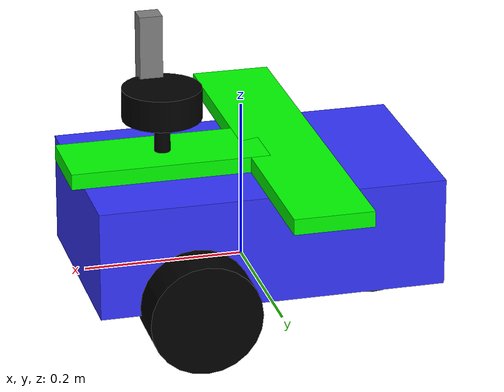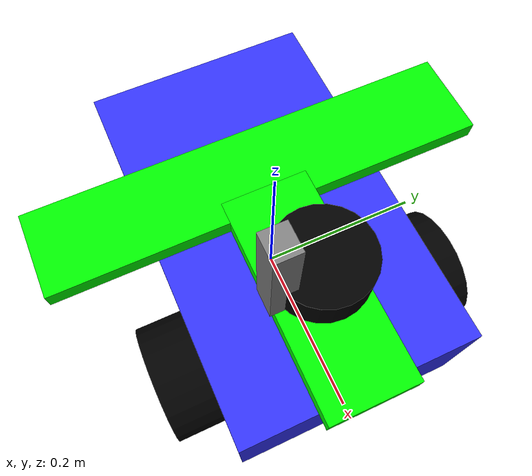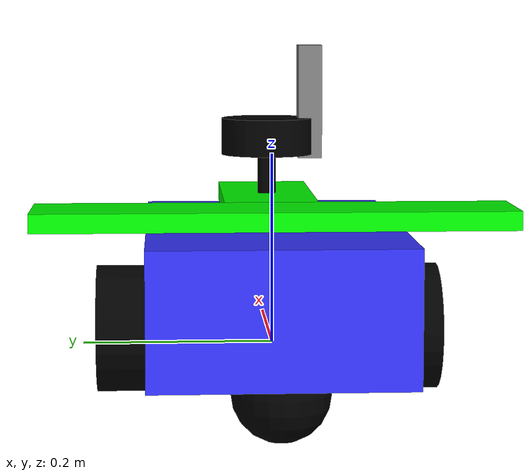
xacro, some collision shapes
<?xml version="1.0" ?>
<robot name='robot' xmlns:xacro="http://ros.org/wiki/xacro">

    <xacro:include filename="$(find robotl_description)/urdf/gazebo.urdf.xacro" />
    <xacro:include filename="$(find robotl_description)/urdf/lidar.urdf.xacro" />
    <xacro:include filename="$(find robotl_description)/urdf/depth.urdf.xacro" />
    <xacro:include filename="$(find robotl_description)/urdf/imu.urdf.xacro" />

    <xacro:property name="chassis_length" value="0.435"/>
    <xacro:property name="chassis_width" value="0.265"/>
    <xacro:property name="chassis_height" value="0.138"/>
    <xacro:property name="wheel_radius" value="0.07"/>
    <xacro:property name="wheel_thickness" value="0.08"/>
    <xacro:property name="wheel_mass" value="0.05"/>
    <xacro:property name="wheel_offset_x" value="0.226"/>
    <xacro:property name="wheel_offset_y" value="0.1485"/>
    <xacro:property name="wheel_offset_z" value="0.01"/>
    <xacro:property name="caster_wheel_radius" value="0.05"/>
    <xacro:property name="caster_wheel_mass" value="0.01"/>
    <xacro:property name="caster_wheel_offset_x" value="0.075"/>
    <xacro:property name="caster_wheel_offset_z" value="${wheel_offset_z - wheel_radius + caster_wheel_radius}"/>
    <xacro:property name="mass" value="1.0"/>

    <material name="white">
        <color rgba="1 1 1 1" />
    </material>

    <material name="orange">
        <color rgba="1 0.3 0.1 1"/>
    </material>

    <material name="blue">
        <color rgba="0.2 0.2 1 1"/>
    </material>

    <material name="black">
        <color rgba="0 0 0 1"/>
    </material>

    <material name="red">
        <color rgba="1 0 0 1"/>
    </material>

    <material name="yellow">
        <color rgba="1 1 0 1"/>
    </material>

    <link name="base_link">
    </link>

    <link name="base_footprint">
    </link>

    <joint name="base_footprint_joint" type="fixed">
        <parent link="base_link"/>
        <child link="base_footprint"/>
        <origin xyz="0 0 -0.138" rpy="0 0 0"/>
    </joint>

    <joint name="chassis_joint" type="fixed">
        <parent link="base_link"/>
        <child link="chassis"/>
        <origin xyz="${-wheel_offset_x} 0 ${-wheel_offset_z}"/>
    </joint>

    <link name='chassis'>

    <inertial>
        <origin xyz="${chassis_length/2} 0 ${chassis_height/2}" rpy="0 0 0"/>
        <mass value="${mass}" />
        <inertia ixx="${(1/12) * mass * (chassis_width*chassis_width+chassis_height*chassis_height)}" ixy="0.0" ixz="0.0"
                 iyy="${(1/12) * mass * (chassis_length*chassis_length+chassis_height*chassis_height)}" iyz="0.0"
                 izz="${(1/12) * mass * (chassis_length*chassis_length+chassis_width*chassis_width)}" />
    </inertial>
    <visual>
        <origin xyz="${chassis_length/2} 0 ${chassis_height/2}"/>
        <geometry>
            <box size="${chassis_length} ${chassis_width} ${chassis_height}"/>
        </geometry>
        <material name="blue"/>
    </visual>
    <collision>
        <origin xyz="${chassis_length/2} 0 ${chassis_height/2}"/>
        <geometry>
            <box size="${chassis_length} ${chassis_width} ${chassis_height}"/>
        </geometry>
    </collision>
    </link>

    <gazebo reference="chassis">
        <material>Gazebo/Orange</material>
    </gazebo>

    <joint name="left_wheel_joint" type="continuous">
        <parent link="base_link"/>
        <child link="left_wheel"/>
        <origin xyz="0.09 ${wheel_offset_y} 0" rpy="-${pi/2} 0 0" />
        <axis xyz="0 0 1"/>
    </joint>

    <link name="left_wheel">
        <visual>
            <geometry>
                <cylinder radius="${wheel_radius}" length="${wheel_thickness}"/>
            </geometry>
            <material name="black"/>
        </visual>
        <collision>
            <geometry>
                <sphere radius="${wheel_radius}"/>
            </geometry>
        </collision>
        <inertial>
            <origin xyz="0 0 0" rpy="0 0 0"/>
            <mass value="${wheel_mass}" />
            <inertia ixx="${(1/12) * wheel_mass * (3*wheel_radius*wheel_radius + wheel_thickness*wheel_thickness)}" ixy="0.0" ixz="0.0"
                     iyy="${(1/12) * wheel_mass * (3*wheel_radius*wheel_radius + wheel_thickness*wheel_thickness)}" iyz="0.0"
                     izz="${(1/2) * wheel_mass * (wheel_radius*wheel_radius)}" />
        </inertial>
    </link>

    <gazebo reference="left_wheel">
        <material>Gazebo/Blue</material>
    </gazebo>

    <joint name="right_wheel_joint" type="continuous">
        <parent link="base_link"/>
        <child link="right_wheel"/>
        <origin xyz="0.09 ${-wheel_offset_y} 0" rpy="${pi/2} 0 0" />
        <axis xyz="0 0 -1"/>
    </joint>

    <link name="right_wheel">
        <visual>
            <geometry>
                <cylinder radius="${wheel_radius}" length="${wheel_thickness}"/>
            </geometry>
            <material name="black"/>
        </visual>
        <collision>
            <geometry>
                <sphere radius="${wheel_radius}"/>
            </geometry>
        </collision>
        <inertial>
            <origin xyz="0 0 0" rpy="0 0 0"/>
            <mass value="${wheel_mass}" />
            <inertia ixx="${(1/12) * wheel_mass * (3*wheel_radius*wheel_radius + wheel_thickness*wheel_thickness)}" ixy="0.0" ixz="0.0"
                     iyy="${(1/12) * wheel_mass * (3*wheel_radius*wheel_radius + wheel_thickness*wheel_thickness)}" iyz="0.0"
                     izz="${(1/2) * wheel_mass * (wheel_radius*wheel_radius)}" />
        </inertial>
    </link>

    <gazebo reference="right_wheel">
        <material>Gazebo/Blue</material>
    </gazebo>

    <joint name="caster_wheel_joint" type="fixed">
        <parent link="chassis"/>
        <child link="caster_wheel"/>
        <origin xyz="${caster_wheel_offset_x - 0.02} 0 ${caster_wheel_offset_z}"/>
    </joint>

    <link name="caster_wheel">
        <visual>
            <geometry>
                <sphere radius="${caster_wheel_radius}"/>
            </geometry>
            <material name="black"/>
        </visual>
        <collision>
            <geometry>
                <sphere radius="${caster_wheel_radius}"/>
            </geometry>
        </collision>
        <inertial>
            <origin xyz="0 0 0" rpy="0 0 0"/>
            <mass value="${caster_wheel_mass}" />
            <inertia ixx="${(2/5) * caster_wheel_mass * (caster_wheel_radius*caster_wheel_radius)}" ixy="0.0" ixz="0.0"
                     iyy="${(2/5) * caster_wheel_mass * (caster_wheel_radius*caster_wheel_radius)}" iyz="0.0"
                     izz="${(2/5) * caster_wheel_mass * (caster_wheel_radius*caster_wheel_radius)}" />
        </inertial>
    </link>

    <gazebo reference="caster_wheel">
        <material>Gazebo/White</material>
        <mu1 value="0.001"/>
        <mu2 value="0.001"/>
    </gazebo>

	<!-- I AM SPEED start -->
	  <!-- T start -->
	  <!-- Rectangle on the top of base_link -->
	  <link name="head_of_T">
	    <visual>
	      <geometry>
		<box size="0.1 0.5 0.02"/> <!-- Размеры прямоугольника (высота, ширина, длина) -->
	      </geometry>
	      <material name="green">
		<color rgba="0.0 1.0 0 1.0"/>
	      </material>
	    </visual>

	    <collision>
	      <geometry>
		<box size="0.1 0.5 0.02"/> <!-- Размеры прямоугольника для коллизий -->
	      </geometry>
	    </collision>

	    <!-- Определение инерции прямоугольника -->
	    <inertial>
	      <origin xyz="0 0 0" rpy="0 0 0"/>
	      <mass value="0.1"/> <!-- Масса прямоугольника -->
	      <inertia ixx="0.001" ixy="0.0" ixz="0.0" iyy="0.001" iyz="0.0" izz="0.001"/> <!-- Моменты инерции -->
	    </inertial>
	  </link>

	  <!-- Joint to connect top_rectangle_link to base_link -->
	  <joint name="head_of_T_joint" type="fixed">
	    <parent link="base_link"/>
	    <child link="head_of_T"/>
	    <origin xyz="-0.05 0.0 ${chassis_height/2 + 0.07}" rpy="0 0 0"/> <!-- Высота прямоугольника относительно base_link -->
	  </joint>

	    <!-- Rectangle at a 90 degree -->
	  <link name="angled_rectangle_link_1">
	    <visual>
	      <geometry>
		<box size="0.25 0.1 0.02"/> <!-- Размеры прямоугольника (высота, ширина, длина) -->
	      </geometry>
	      <material name="green">
		<color rgba="0 1.0 0 1.0"/>
	      </material>
	    </visual>

	    <collision>
	      <geometry>
		<box size="0.25 0.1 0.02"/> <!-- Размеры прямоугольника для коллизий -->
	      </geometry>
	    </collision>

	    <!-- Определение инерции прямоугольника -->
	    <inertial>
	      <origin xyz="0 0 0" rpy="0 0 0"/>
	      <mass value="0.1"/> <!-- Масса прямоугольника -->
	      <inertia ixx="0.001" ixy="0.0" ixz="0.0" iyy="0.001" iyz="0.0" izz="0.001"/> <!-- Моменты инерции -->
	    </inertial>
	  </link>

	  <!-- Joint to connect angled_rectangle_link_1 to base_link at a 45-degree angle -->
	  <joint name="angled_rectangle_joint_1" type="fixed">
	    <parent link="base_link"/>
	    <child link="angled_rectangle_link_1"/>
	    <origin xyz="0.1 0 ${chassis_height/2 + 0.07}" rpy="0 0 0"/>
	    <axis xyz="1 0 0"/> <!-- Ось вращения вдоль z-оси (вертикальная ось) -->
	  </joint>

	  <!-- T end -->

	  <!-- I AM SPEED end-->

</robot>

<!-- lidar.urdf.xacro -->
<robot xmlns:xacro="http://www.ros.org/wiki/xacro">

    <joint name="laser_joint" type="fixed">
        <parent link="base_link"/>
        <child link="laser_frame"/>
        <origin xyz="0.1 0 0.212" rpy="0 0 0"/>
    </joint>

    <link name="laser_frame">
        <visual>
            <geometry>
                <cylinder radius="0.05" length="0.04"/>
            </geometry>
            <material name="black"/>
        </visual>
        <visual>
            <origin xyz="0 0 -0.05"/>
            <geometry>
                <cylinder radius="0.01" length="0.1"/>
            </geometry>
            <material name="black"/>
        </visual>
        <collision>
            <geometry>
                <cylinder radius="0.05" length="0.04"/>
            </geometry>
        </collision>
        <inertial>
            <origin xyz="0 0 0" rpy="0 0 0"/>
            <mass value="0.1" />
            <inertia ixx="${(1/12) * 0.1 * (3*0.05*0.05 + 0.04*0.04)}" ixy="0.0" ixz="0.0"
                     iyy="${(1/12) * 0.1 * (3*0.05*0.05 + 0.04*0.04)}" iyz="0.0"
                     izz="${(1/2) * 0.1 * (0.05*0.05)}" />
        </inertial>
    </link>

    <gazebo reference="laser_frame">
        <material>Gazebo/Black</material>

        <sensor name='laser_sensor_frame' type='gpu_lidar'>"
            <gz_frame_id>robot/laser_frame</gz_frame_id>
            <pose> 0 0 0 0 0 0 </pose>
            <visualize>true</visualize>
            <always_on>true</always_on>
            <update_rate>10</update_rate>
            <ray>
                <scan>
                    <horizontal>
                        <samples>360</samples>
                        <min_angle>-0.6</min_angle>
                        <max_angle>0.6</max_angle>
                    </horizontal>
                </scan>
                <range>
                    <min>0.3</min>
                    <max>12</max>
                </range>
                <noise>
                    <type>gaussian</type>
                    <mean>0.0</mean>
                    <stddev>0.007</stddev>
                </noise>
            </ray>
        </sensor>
    </gazebo>
</robot>

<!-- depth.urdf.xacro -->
<robot xmlns:xacro="http://www.ros.org/wiki/xacro">

    <xacro:property name="M_PI" value="3.1415926535897931" />

    <joint name="depth_joint" type="fixed">
        <parent link="base_link"/>
        <child link="depth_frame"/>
        <origin xyz="0.1 0 0.25" rpy="0 0 0"/>
    </joint>

    <material name="aluminum">
      <color rgba="0.5 0.5 0.5 1"/>
    </material>

    <link name="depth_frame">
        <visual>
            <origin xyz="0.00465 -0.0475 0" rpy="${M_PI/2} 0 ${M_PI/2}"/>
            <geometry>
                <mesh filename="file://$(find robot_description)/urdf/d455.stl" scale="0.001 0.001 0.001"/>
                <!--box size="0.026 0.124 0.029"/-->
            </geometry>
            <material name="aluminum"/>
        </visual>
        <collision>
            <origin xyz="0.00465 -0.0475 0" rpy="${M_PI/2} 0 ${M_PI/2}"/>
            <geometry>
                <box size="0.026 0.124 0.029"/>
            </geometry>
        </collision>
        <inertial>
            <origin xyz="0 0 0" rpy="0 0 0"/>
            <mass value="0.116" />
            <inertia ixx="${(1/12) * 0.116 * (0.026*0.026+0.029*0.029)}" ixy="0.0" ixz="0.0"
                     iyy="${(1/12) * 0.116 * (0.124*0.124+0.029*0.029)}" iyz="0.0"
                     izz="${(1/12) * 0.116 * (0.124*0.124+0.026*0.026)}" />
        </inertial>
    </link>

    <gazebo reference="depth_frame">
        <sensor name='depth_sensor_frame' type='depth_camera'>"
            <gz_frame_id>robot/depth_frame</gz_frame_id>
            <pose> 0 0 0 0 0 0 </pose>
            <always_on>true</always_on>
            <update_rate>10</update_rate>
            <camera>
                <horizontal_fov>1.51843645</horizontal_fov>
                <image>
                    <width>848</width>
                    <height>480</height>
                    <format>R_FLOAT32</format>
                </image>
                <clip>
                    <near>0.1</near>
                    <far>10</far>
                </clip>
                <lens>
                    <intrinsics>
                    <fx>421.61578369140625</fx>
                    <fy>421.61578369140625</fy>
                    <cx>422.2854309082031</cx>
                    <cy>236.57237243652344</cy>
                    <s>0</s>
                    </intrinsics>
                </lens>
                <noise>
                    <type>gaussian</type>
                    <mean>0.0</mean>
                    <stddev>0.007</stddev>
                </noise>
            </camera>
        </sensor>
        <sensor name="color_sensor_frame" type="camera">
            <gz_frame_id>robot/depth_frame</gz_frame_id>
            <pose>0 0 0 0 0 0</pose>
            <update_rate>30</update_rate>
            <always_on>true</always_on>
            <camera>
                <horizontal_fov>1.20427718</horizontal_fov>
                <image>
                    <width>848</width>
                    <height>480</height>
                </image>
                <clip>
                    <near>0.1</near>
                    <far>50</far>
                </clip>
                <lens>
                    <intrinsics>
                    <fx>615.9603271484375</fx>
                    <fy>616.227294921875</fy>
                    <cx>419.83026123046875</cx>
                    <cy>245.1431427001953</cy>
                    <s>0</s>
                    </intrinsics>
                </lens>
            </camera>
        </sensor>
    </gazebo>
</robot>

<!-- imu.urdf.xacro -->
<robot xmlns:xacro="http://www.ros.org/wiki/xacro">

    <joint name="imu_joint" type="fixed">
        <parent link="base_link"/>
        <child link="imu_frame"/>
        <origin xyz="0.1 0 0.212" rpy="0 0 0"/>
    </joint>

    <link name="imu_frame">
        <visual>
            <geometry>
                <cylinder radius="0.05" length="0.04"/>
            </geometry>
            <material name="black"/>
        </visual>
        <visual>
            <origin xyz="0 0 -0.05"/>
            <geometry>
                <cylinder radius="0.01" length="0.1"/>
            </geometry>
            <material name="black"/>
        </visual>
        <collision>
            <geometry>
                <cylinder radius="0.05" length="0.04"/>
            </geometry>
        </collision>
        <inertial>
            <origin xyz="0 0 0" rpy="0 0 0"/>
            <mass value="0.1" />
            <inertia ixx="${(1/12) * 0.1 * (3*0.05*0.05 + 0.04*0.04)}" ixy="0.0" ixz="0.0"
                     iyy="${(1/12) * 0.1 * (3*0.05*0.05 + 0.04*0.04)}" iyz="0.0"
                     izz="${(1/2) * 0.1 * (0.05*0.05)}" />
        </inertial>
    </link>

    <gazebo reference="imu_frame">
        <material>Gazebo/Black</material>

        <sensor name="imu_sensor" type="imu">
            <gz_frame_id>robot/imu_frame</gz_frame_id>
            <pose> 0 0 0 0 0 0 </pose>
            <always_on>1</always_on>
            <update_rate>10</update_rate>
            <visualize>true</visualize>
        </sensor>
    </gazebo>
</robot>
